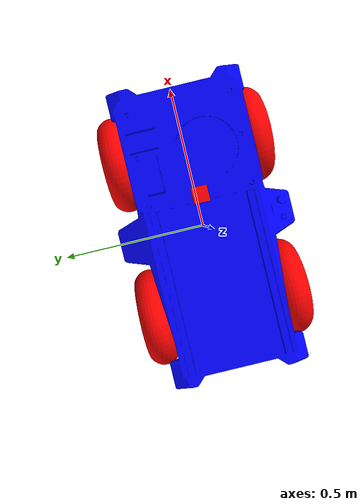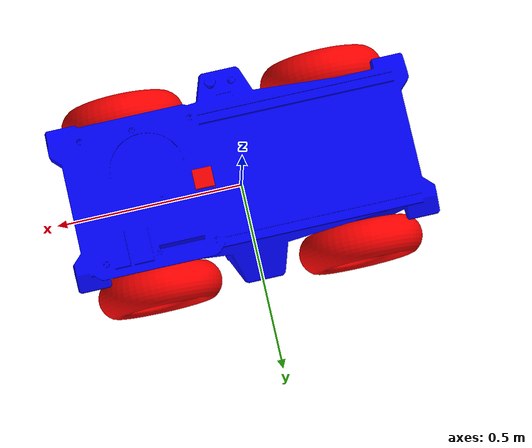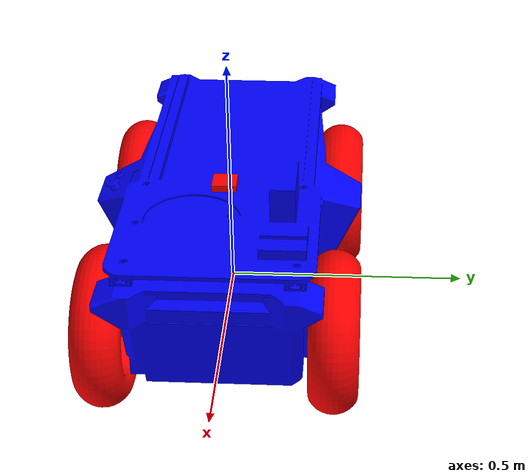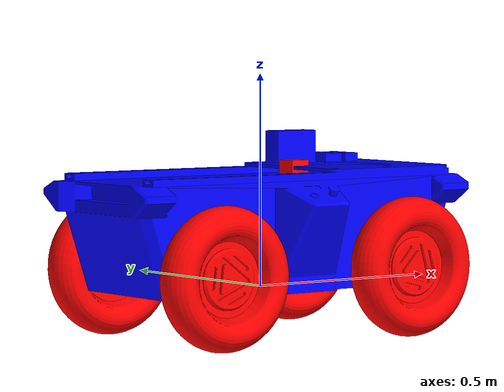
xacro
<?xml version="1.0" encoding="utf-8"?>

<!-- This xacro was created by ZZX-->

<robot xmlns:xacro="http://www.ros.org/wiki/xacro"

    xmlns:sensor="http://playerstage.sourceforge.net/gazebo/xmlschema/#sensor"

    xmlns:controller="http://playerstage.sourceforge.net/gazebo/xmlschema/#controller"

    xmlns:interface="http://playerstage.sourceforge.net/gazebo/xmlschema/#interface"

    name="ls_run_robot">
<link
    name="base_link1">
    <inertial>
      <origin
        xyz="0.0046019 0.001076 0.13741"
        rpy="0 0 0" />
      <mass
        value="2000.936" />
      <inertia
        ixx="1.394"
        ixy="-0.0012908"
        ixz="-0.0010527"
        iyy="4.9931"
        iyz="-0.00089468"
        izz="5.5153" />
    </inertial>
    <visual>
      <origin
        xyz="0 0 0"
        rpy="0 0 0" />
      <geometry>
        <mesh
          filename="package://caurobot_description/meshes/base_link.STL" />
      </geometry>
      <material
        name="">
        <color
          rgba="0 0 1 1" />
      </material>
    </visual>
    <collision>
      <origin
        xyz="0 0 0"
        rpy="0 0 0" />
      <geometry>
        <mesh
          filename="package://caurobot_description/meshes/base_link.STL" />
      </geometry>
    </collision>
  </link>
  <link
    name="left_front_link">
    <inertial>
      <origin
        xyz="8.1201E-07 -0.022137 -1.9582E-06"
        rpy="0 0 0" />
      <mass
        value="15.6581" />
      <inertia
        ixx="0.045747"
        ixy="-8.2978E-08"
        ixz="-2.9744E-09"
        iyy="0.084763"
        iyz="2.001E-07"
        izz="0.045747" />
    </inertial>
    <visual>
      <origin
        xyz="0 0 0"
        rpy="0 0 0" />
      <geometry>
        <mesh
          filename="package://caurobot_description/meshes/left_front_link.STL" />
      </geometry>
      <material
        name="">
        <color
          rgba="1 0 0 1" />
      </material>
    </visual>
    <collision>
      <origin
        xyz="0 0 0"
        rpy="0 0 0" />
      <geometry>
        <mesh
          filename="package://caurobot_description/meshes/left_front_link.STL" />
      </geometry>
    </collision>
  </link>
  <joint
    name="left_front_joint"
    type="continuous">
    <origin
      xyz="0.269999999999996 0.251796098814331 0.0480000000000079"
      rpy="0 0 0" />
    <parent
      link="base_link1" />
    <child
      link="left_front_link" />
    <axis
      xyz="0 -1 0" />
  </joint>
  <link
    name="right_front_link">
    <inertial>
      <origin
        xyz="-5.0627E-07 0.022137 -2.0585E-06"
        rpy="0 0 0" />
      <mass
        value="15.6581" />
      <inertia
        ixx="0.045747"
        ixy="-5.1736E-08"
        ixz="1.9495E-09"
        iyy="0.084763"
        iyz="-2.1036E-07"
        izz="0.045747" />
    </inertial>
    <visual>
      <origin
        xyz="0 0 0"
        rpy="0 0 0" />
      <geometry>
        <mesh
          filename="package://caurobot_description/meshes/right_front_link.STL" />
      </geometry>
      <material
        name="">
        <color
          rgba="1 0 0 1" />
      </material>
    </visual>
    <collision>
      <origin
        xyz="0 0 0"
        rpy="0 0 0" />
      <geometry>
        <mesh
          filename="package://caurobot_description/meshes/right_front_link.STL" />
      </geometry>
    </collision>
  </link>
  <joint
    name="right_front_joint"
    type="continuous">
    <origin
      xyz="0.270000000000003 -0.251796098814325 0.0479999999999995"
      rpy="0 0 0" />
    <parent
      link="base_link1" />
    <child
      link="right_front_link" />
    <axis
      xyz="0 1 0" />
  </joint>
  <link
    name="left_back_link">
    <inertial>
      <origin
        xyz="8.1201E-07 -0.022137 -1.9582E-06"
        rpy="0 0 0" />
      <mass
        value="15.6581" />
      <inertia
        ixx="0.045747"
        ixy="-8.2978E-08"
        ixz="-2.9744E-09"
        iyy="0.084763"
        iyz="2.001E-07"
        izz="0.045747" />
    </inertial>
    <visual>
      <origin
        xyz="0 0 0"
        rpy="0 0 0" />
      <geometry>
        <mesh
          filename="package://caurobot_description/meshes/left_back_link.STL" />
      </geometry>
      <material
        name="">
        <color
          rgba="1 0 0 1" />
      </material>
    </visual>
    <collision>
      <origin
        xyz="0 0 0"
        rpy="0 0 0" />
      <geometry>
        <mesh
          filename="package://caurobot_description/meshes/left_back_link.STL" />
      </geometry>
    </collision>
  </link>
  <joint
    name="left_back_joint"
    type="continuous">
    <origin
      xyz="-0.270000000000004 0.251796098814323 0.0480000000000005"
      rpy="0 0 0" />
    <parent
      link="base_link1" />
    <child
      link="left_back_link" />
    <axis
      xyz="0 -1 0" />
  </joint>
  <link
    name="right_back_link">
    <inertial>
      <origin
        xyz="8.1201E-07 0.022137 -1.9582E-06"
        rpy="0 0 0" />
      <mass
        value="15.6581" />
      <inertia
        ixx="0.045747"
        ixy="8.2978E-08"
        ixz="-2.9744E-09"
        iyy="0.084763"
        iyz="-2.001E-07"
        izz="0.045747" />
    </inertial>
    <visual>
      <origin
        xyz="0 0 0"
        rpy="0 0 0" />
      <geometry>
        <mesh
          filename="package://caurobot_description/meshes/right_back_link.STL" />
      </geometry>
      <material
        name="">
        <color
          rgba="1 0 0 1" />
      </material>
    </visual>
    <collision>
      <origin
        xyz="0 0 0"
        rpy="0 0 0" />
      <geometry>
        <mesh
          filename="package://caurobot_description/meshes/right_back_link.STL" />
      </geometry>
    </collision>
  </link>
  <joint
    name="right_back_joint"
    type="continuous">
    <origin
      xyz="-0.269999999999997 -0.251796098814332 0.0479999999999922"
      rpy="0 0 0" />
    <parent
      link="base_link1" />
    <child
      link="right_back_link" />
    <axis
      xyz="0 1 0" />
  </joint>
<gazebo reference="base_link1">
            <material>Gazebo/Yellow</material>
</gazebo>
<gazebo reference="left_front_link">
            <material>Gazebo/Black</material>

</gazebo>

<gazebo reference="right_front_link">
            <material>Gazebo/Black</material>

</gazebo>

<gazebo reference="left_back_link">
            <material>Gazebo/Black</material>

</gazebo>

<gazebo reference="right_back_link">
            <material>Gazebo/Black</material>

</gazebo>

    <xacro:property name="imu_size"     value="0.05" />
    <xacro:property name="imu_m" value="0.01" /> <!-- imu质量 -->
    <xacro:property name="imu_offset_x" value="0.10" />
    <xacro:property name="imu_offset_y" value="0" />
    <xacro:property name="imu_offset_z" value="0.27" />
    <!-- imu -->

    <link name="imu">
        <visual>
            <origin rpy="0 0 0" xyz="0 0 0" />
            <geometry>
                    <box size="${imu_size} ${imu_size} ${imu_size}"/>
            </geometry>
            <material name= "red" >
              <color rgba="1.0 0.0 0.0 1.0" />
            </material>
        </visual>
        <collision>
            <geometry>
                <box size="${imu_size} ${imu_size} ${imu_size}" />
            </geometry>
            <origin xyz="0.0 0.0 0" rpy="0.0 0.0 0.0" />
        </collision>
    </link>
    <joint name="imu_joint" type="fixed">
        <origin xyz="${imu_offset_x} ${imu_offset_y} ${imu_offset_z}" rpy="0 0 0" />
        <parent link="base_link1"/>
        <child link="imu"/>
    </joint>

<!-- Transmission is important to link the joints and the controller -->
        <transmission name="left_front_joint_trans">
            <type>transmission_interface/SimpleTransmission</type>
            <joint name="left_front_joint" >
                <hardwareInterface>hardware_interface/VelocityJointInterface</hardwareInterface>
            </joint>
            <actuator name="left_front_joint_motor">
                <hardwareInterface>hardware_interface/VelocityJointInterface</hardwareInterface>
                <mechanicalReduction>1</mechanicalReduction>
            </actuator>
        </transmission>

<!-- Transmission is important to link the joints and the controller -->
        <transmission name="left_back_joint_trans">
            <type>transmission_interface/SimpleTransmission</type>
            <joint name="left_back_joint" >
                <hardwareInterface>hardware_interface/VelocityJointInterface</hardwareInterface>
            </joint>
            <actuator name="left_back_joint_motor">
                <hardwareInterface>hardware_interface/VelocityJointInterface</hardwareInterface>
                <mechanicalReduction>1</mechanicalReduction>
            </actuator>
        </transmission>

    <!-- Transmission is important to link the joints and the controller -->
        <transmission name="right_front_joint_trans">
            <type>transmission_interface/SimpleTransmission</type>
            <joint name="right_front_joint" >
                <hardwareInterface>hardware_interface/VelocityJointInterface</hardwareInterface>
            </joint>
            <actuator name="right_front_joint_motor">
                <hardwareInterface>hardware_interface/VelocityJointInterface</hardwareInterface>
                <mechanicalReduction>1</mechanicalReduction>
            </actuator>
        </transmission>

    <!-- Transmission is important to link the joints and the controller -->
        <transmission name="right_back_joint_trans">
            <type>transmission_interface/SimpleTransmission</type>
            <joint name="right_back_joint" >
                <hardwareInterface>hardware_interface/VelocityJointInterface</hardwareInterface>
            </joint>
            <actuator name="right_back_joint_motor">
                <hardwareInterface>hardware_interface/VelocityJointInterface</hardwareInterface>
                <mechanicalReduction>1</mechanicalReduction>
            </actuator>
        </transmission>

<!-- controller -->
        <gazebo>
    <plugin name="object_controller" filename="libgazebo_ros_planar_move.so">
      <commandTopic>cmd_vel</commandTopic>
      <odometryTopic>odom</odometryTopic>
      <odometryFrame>odom</odometryFrame>
      <odometryRate>20.0</odometryRate>
      <robotBaseFrame>base_link1</robotBaseFrame>
    </plugin>
  </gazebo>

   <gazebo reference="imu">
        <material>Gazebo/Red</material>
    </gazebo>

    <gazebo reference="imu">
        <gravity>true</gravity>
        <sensor name="imu_sensor" type="imu">
            <always_on>true</always_on>
            <update_rate>100</update_rate>
            <visualize>true</visualize>
            <topic>__default_topic__</topic>
            <plugin filename="libgazebo_ros_imu_sensor.so" name="imu_plugin">
                <topicName>imu_data</topicName>
                <bodyName>imu</bodyName>
                <updateRateHZ>100.0</updateRateHZ>
                <gaussianNoise>0.0</gaussianNoise>
                <xyzOffset>0 0 0</xyzOffset>
                <rpyOffset>0 0 0</rpyOffset>
                <frameName>imu</frameName>
            </plugin>
            <pose>0 0 0 0 0 0</pose>
        </sensor>
    </gazebo>

</robot>
